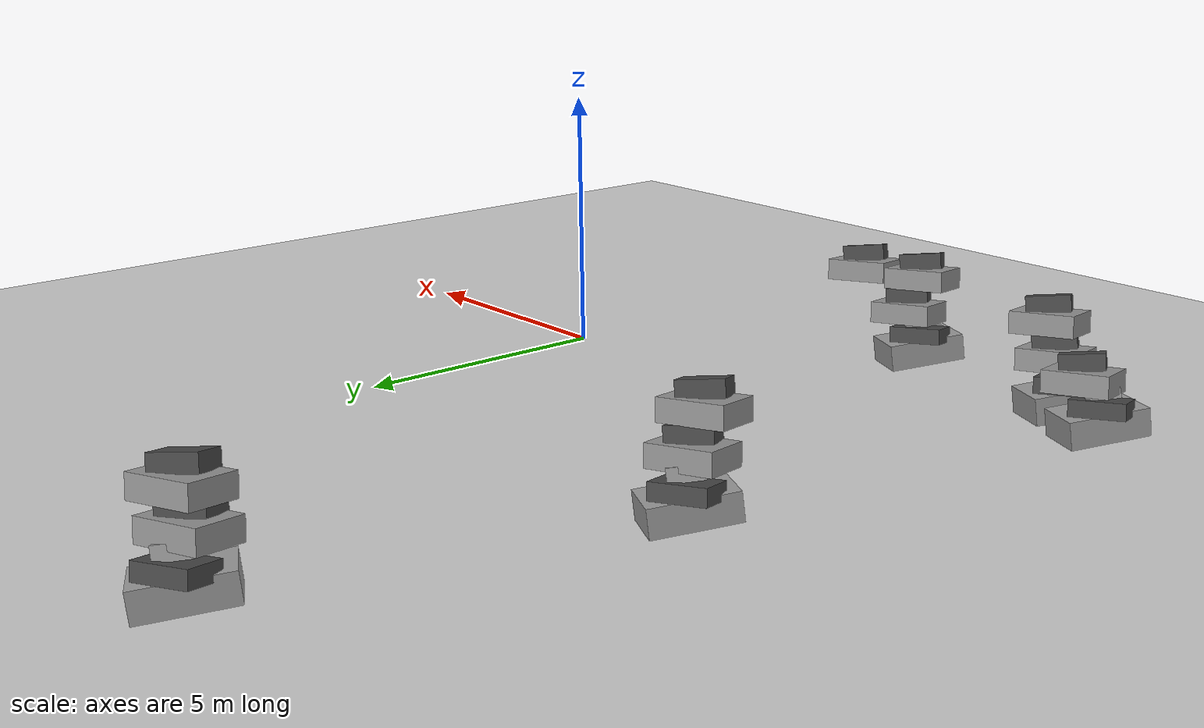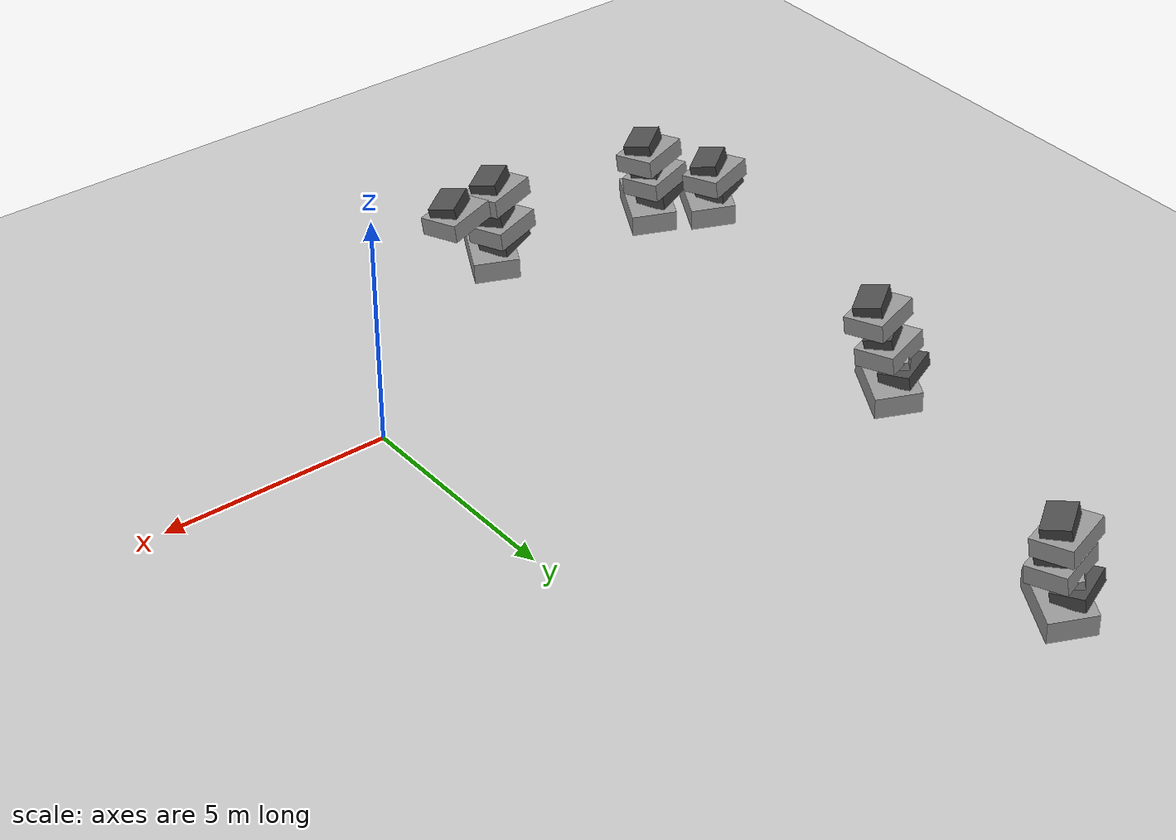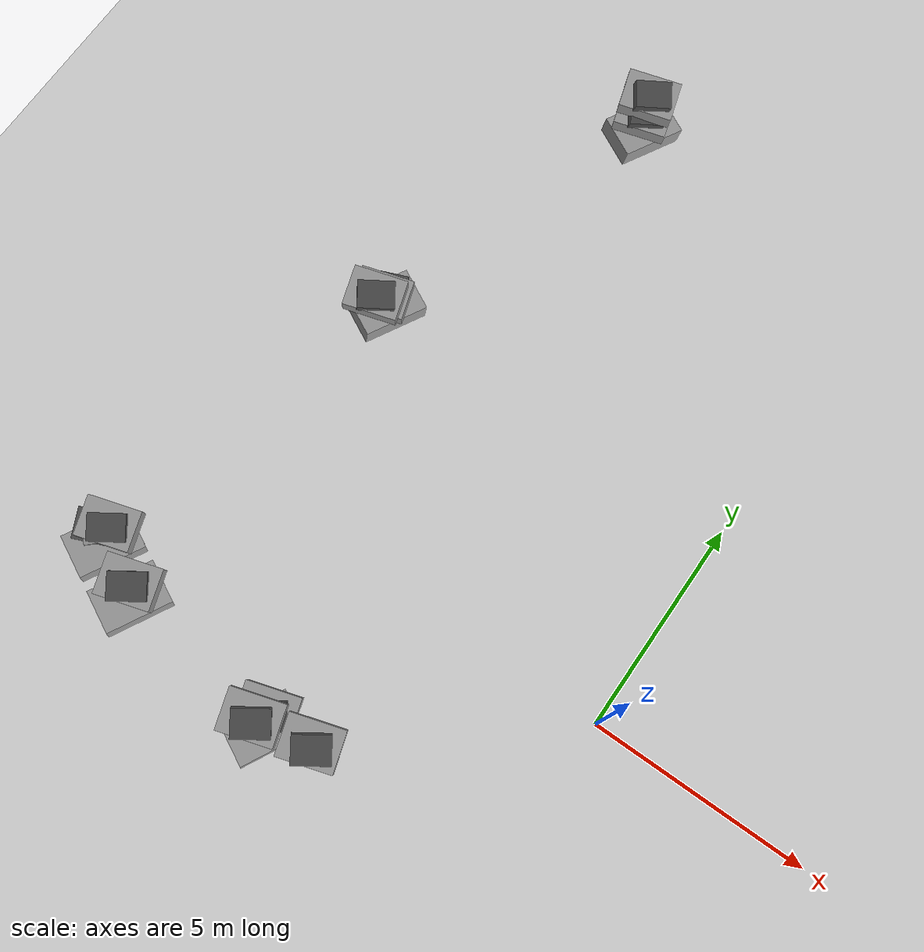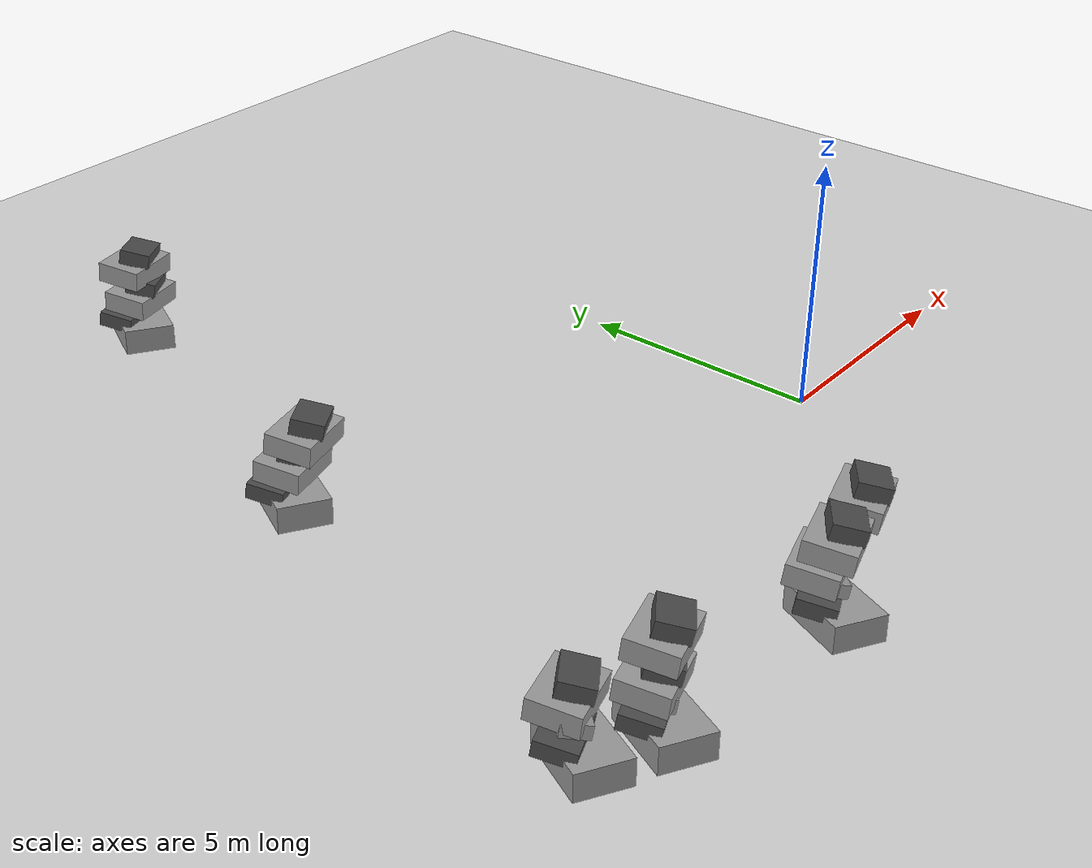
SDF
<sdf version="1.9">
 <world name="disaster_hospital">
  <include>
   <uri>file:///home/robotics/.gazebo/models/ground_plane</uri>
   <static>true</static>
   <name>ground_plane</name>
   <pose>0 0 -0.1 0 -0 0</pose>
  </include>
  <model name="rubble2_06">
   <static>true</static>
   <pose>-5.60363 -4.04821 0 0 -0 0</pose>
   <link name="link">
    <collision name="base_collision">
     <pose>0 0 0.25 0.05 0.1 1.1</pose>
     <geometry><box><size>1.5 1 0.5</size></box></geometry>
    </collision>
    <visual name="base_visual">
     <pose>0 0 0.25 0.05 0.1 1.1</pose>
     <geometry><box><size>1.5 1 0.5</size></box></geometry>
     <material>
      <script><uri>file://media/materials/scripts/gazebo.material</uri><name>Gazebo/Grey</name></script>
     </material>
    </visual>
    <collision name="mid_collision">
     <pose>-0.2 0.2 0.6 0.15 0.05 0.4</pose>
     <geometry><box><size>1 0.7 0.3</size></box></geometry>
    </collision>
    <visual name="mid_visual">
     <pose>-0.2 0.2 0.6 0.15 0.05 0.4</pose>
     <geometry><box><size>1 0.7 0.3</size></box></geometry>
     <material>
      <script><uri>file://media/materials/scripts/gazebo.material</uri><name>Gazebo/DarkGrey</name></script>
     </material>
    </visual>
    <collision name="top_collision">
     <pose>-0.1 0.1 0.85 0.2 0.15 0.8</pose>
     <geometry><box><size>0.6 0.5 0.25</size></box></geometry>
    </collision>
    <visual name="top_visual">
     <pose>-0.1 0.1 0.85 0.2 0.15 0.8</pose>
     <geometry><box><size>0.6 0.5 0.25</size></box></geometry>
     <material>
      <script><uri>file://media/materials/scripts/gazebo.material</uri><name>Gazebo/Grey</name></script>
     </material>
    </visual>
    <inertial>
     <mass>1</mass>
     <inertia><ixx>1</ixx><ixy>0</ixy><ixz>0</ixz><iyy>1</iyy><iyz>0</iyz><izz>1</izz></inertia>
    </inertial>
   </link>
  </model>
  <model name="rubble1_09">
   <static>true</static>
   <pose>-5.63108 -3.68594 0.854105 0 -0 0</pose>
   <link name="link">
    <collision name="base_collision">
     <pose>0 0 0.2 0.1 0.05 0.3</pose>
     <geometry><box><size>1.2 0.9 0.4</size></box></geometry>
    </collision>
    <visual name="base_visual">
     <pose>0 0 0.2 0.1 0.05 0.3</pose>
     <geometry><box><size>1.2 0.9 0.4</size></box></geometry>
     <material>
      <script><uri>file://media/materials/scripts/gazebo.material</uri><name>Gazebo/Grey</name></script>
     </material>
    </visual>
    <collision name="top_collision">
     <pose>0.1 -0.1 0.5 0.2 0.1 0.6</pose>
     <geometry><box><size>0.8 0.6 0.3</size></box></geometry>
    </collision>
    <visual name="top_visual">
     <pose>0.1 -0.1 0.5 0.2 0.1 0.6</pose>
     <geometry><box><size>0.8 0.6 0.3</size></box></geometry>
     <material>
      <script><uri>file://media/materials/scripts/gazebo.material</uri><name>Gazebo/DarkGrey</name></script>
     </material>
    </visual>
    <inertial>
     <mass>1</mass>
     <inertia><ixx>1</ixx><ixy>0</ixy><ixz>0</ixz><iyy>1</iyy><iyz>0</iyz><izz>1</izz></inertia>
    </inertial>
   </link>
  </model>
  <model name="rubble2_16">
   <static>true</static>
   <pose>-10.7362 -2.88621 0 0 -0 0</pose>
   <link name="link">
    <collision name="base_collision">
     <pose>0 0 0.25 0.05 0.1 1.1</pose>
     <geometry><box><size>1.5 1 0.5</size></box></geometry>
    </collision>
    <visual name="base_visual">
     <pose>0 0 0.25 0.05 0.1 1.1</pose>
     <geometry><box><size>1.5 1 0.5</size></box></geometry>
     <material>
      <script><uri>file://media/materials/scripts/gazebo.material</uri><name>Gazebo/Grey</name></script>
     </material>
    </visual>
    <collision name="mid_collision">
     <pose>-0.2 0.2 0.6 0.15 0.05 0.4</pose>
     <geometry><box><size>1 0.7 0.3</size></box></geometry>
    </collision>
    <visual name="mid_visual">
     <pose>-0.2 0.2 0.6 0.15 0.05 0.4</pose>
     <geometry><box><size>1 0.7 0.3</size></box></geometry>
     <material>
      <script><uri>file://media/materials/scripts/gazebo.material</uri><name>Gazebo/DarkGrey</name></script>
     </material>
    </visual>
    <collision name="top_collision">
     <pose>-0.1 0.1 0.85 0.2 0.15 0.8</pose>
     <geometry><box><size>0.6 0.5 0.25</size></box></geometry>
    </collision>
    <visual name="top_visual">
     <pose>-0.1 0.1 0.85 0.2 0.15 0.8</pose>
     <geometry><box><size>0.6 0.5 0.25</size></box></geometry>
     <material>
      <script><uri>file://media/materials/scripts/gazebo.material</uri><name>Gazebo/Grey</name></script>
     </material>
    </visual>
    <inertial>
     <mass>1</mass>
     <inertia><ixx>1</ixx><ixy>0</ixy><ixz>0</ixz><iyy>1</iyy><iyz>0</iyz><izz>1</izz></inertia>
    </inertial>
   </link>
  </model>
  <model name="rubble2_17">
   <static>true</static>
   <pose>-9.53296 -3.48983 0 0 -0 0</pose>
   <link name="link">
    <collision name="base_collision">
     <pose>0 0 0.25 0.05 0.1 1.1</pose>
     <geometry><box><size>1.5 1 0.5</size></box></geometry>
    </collision>
    <visual name="base_visual">
     <pose>0 0 0.25 0.05 0.1 1.1</pose>
     <geometry><box><size>1.5 1 0.5</size></box></geometry>
     <material>
      <script><uri>file://media/materials/scripts/gazebo.material</uri><name>Gazebo/Grey</name></script>
     </material>
    </visual>
    <collision name="mid_collision">
     <pose>-0.2 0.2 0.6 0.15 0.05 0.4</pose>
     <geometry><box><size>1 0.7 0.3</size></box></geometry>
    </collision>
    <visual name="mid_visual">
     <pose>-0.2 0.2 0.6 0.15 0.05 0.4</pose>
     <geometry><box><size>1 0.7 0.3</size></box></geometry>
     <material>
      <script><uri>file://media/materials/scripts/gazebo.material</uri><name>Gazebo/DarkGrey</name></script>
     </material>
    </visual>
    <collision name="top_collision">
     <pose>-0.1 0.1 0.85 0.2 0.15 0.8</pose>
     <geometry><box><size>0.6 0.5 0.25</size></box></geometry>
    </collision>
    <visual name="top_visual">
     <pose>-0.1 0.1 0.85 0.2 0.15 0.8</pose>
     <geometry><box><size>0.6 0.5 0.25</size></box></geometry>
     <material>
      <script><uri>file://media/materials/scripts/gazebo.material</uri><name>Gazebo/Grey</name></script>
     </material>
    </visual>
    <inertial>
     <mass>1</mass>
     <inertia><ixx>1</ixx><ixy>0</ixy><ixz>0</ixz><iyy>1</iyy><iyz>0</iyz><izz>1</izz></inertia>
    </inertial>
   </link>
  </model>
  <model name="rubble2_18">
   <static>true</static>
   <pose>-6.64454 12.0901 0 0 -0 0</pose>
   <link name="link">
    <collision name="base_collision">
     <pose>0 0 0.25 0.05 0.1 1.1</pose>
     <geometry><box><size>1.5 1 0.5</size></box></geometry>
    </collision>
    <visual name="base_visual">
     <pose>0 0 0.25 0.05 0.1 1.1</pose>
     <geometry><box><size>1.5 1 0.5</size></box></geometry>
     <material>
      <script><uri>file://media/materials/scripts/gazebo.material</uri><name>Gazebo/Grey</name></script>
     </material>
    </visual>
    <collision name="mid_collision">
     <pose>-0.2 0.2 0.6 0.15 0.05 0.4</pose>
     <geometry><box><size>1 0.7 0.3</size></box></geometry>
    </collision>
    <visual name="mid_visual">
     <pose>-0.2 0.2 0.6 0.15 0.05 0.4</pose>
     <geometry><box><size>1 0.7 0.3</size></box></geometry>
     <material>
      <script><uri>file://media/materials/scripts/gazebo.material</uri><name>Gazebo/DarkGrey</name></script>
     </material>
    </visual>
    <collision name="top_collision">
     <pose>-0.1 0.1 0.85 0.2 0.15 0.8</pose>
     <geometry><box><size>0.6 0.5 0.25</size></box></geometry>
    </collision>
    <visual name="top_visual">
     <pose>-0.1 0.1 0.85 0.2 0.15 0.8</pose>
     <geometry><box><size>0.6 0.5 0.25</size></box></geometry>
     <material>
      <script><uri>file://media/materials/scripts/gazebo.material</uri><name>Gazebo/Grey</name></script>
     </material>
    </visual>
    <inertial>
     <mass>1</mass>
     <inertia><ixx>1</ixx><ixy>0</ixy><ixz>0</ixz><iyy>1</iyy><iyz>0</iyz><izz>1</izz></inertia>
    </inertial>
   </link>
  </model>
  <model name="rubble2_19">
   <static>true</static>
   <pose>-8.97375 5.03409 0 0 -0 0</pose>
   <link name="link">
    <collision name="base_collision">
     <pose>0 0 0.25 0.05 0.1 1.1</pose>
     <geometry><box><size>1.5 1 0.5</size></box></geometry>
    </collision>
    <visual name="base_visual">
     <pose>0 0 0.25 0.05 0.1 1.1</pose>
     <geometry><box><size>1.5 1 0.5</size></box></geometry>
     <material>
      <script><uri>file://media/materials/scripts/gazebo.material</uri><name>Gazebo/Grey</name></script>
     </material>
    </visual>
    <collision name="mid_collision">
     <pose>-0.2 0.2 0.6 0.15 0.05 0.4</pose>
     <geometry><box><size>1 0.7 0.3</size></box></geometry>
    </collision>
    <visual name="mid_visual">
     <pose>-0.2 0.2 0.6 0.15 0.05 0.4</pose>
     <geometry><box><size>1 0.7 0.3</size></box></geometry>
     <material>
      <script><uri>file://media/materials/scripts/gazebo.material</uri><name>Gazebo/DarkGrey</name></script>
     </material>
    </visual>
    <collision name="top_collision">
     <pose>-0.1 0.1 0.85 0.2 0.15 0.8</pose>
     <geometry><box><size>0.6 0.5 0.25</size></box></geometry>
    </collision>
    <visual name="top_visual">
     <pose>-0.1 0.1 0.85 0.2 0.15 0.8</pose>
     <geometry><box><size>0.6 0.5 0.25</size></box></geometry>
     <material>
      <script><uri>file://media/materials/scripts/gazebo.material</uri><name>Gazebo/Grey</name></script>
     </material>
    </visual>
    <inertial>
     <mass>1</mass>
     <inertia><ixx>1</ixx><ixy>0</ixy><ixz>0</ixz><iyy>1</iyy><iyz>0</iyz><izz>1</izz></inertia>
    </inertial>
   </link>
  </model>
  <model name="rubble1_16">
   <static>true</static>
   <pose>-9.52299 -3.23745 0.854105 0 -0 0</pose>
   <link name="link">
    <collision name="base_collision">
     <pose>0 0 0.2 0.1 0.05 0.3</pose>
     <geometry><box><size>1.2 0.9 0.4</size></box></geometry>
    </collision>
    <visual name="base_visual">
     <pose>0 0 0.2 0.1 0.05 0.3</pose>
     <geometry><box><size>1.2 0.9 0.4</size></box></geometry>
     <material>
      <script><uri>file://media/materials/scripts/gazebo.material</uri><name>Gazebo/Grey</name></script>
     </material>
    </visual>
    <collision name="top_collision">
     <pose>0.1 -0.1 0.5 0.2 0.1 0.6</pose>
     <geometry><box><size>0.8 0.6 0.3</size></box></geometry>
    </collision>
    <visual name="top_visual">
     <pose>0.1 -0.1 0.5 0.2 0.1 0.6</pose>
     <geometry><box><size>0.8 0.6 0.3</size></box></geometry>
     <material>
      <script><uri>file://media/materials/scripts/gazebo.material</uri><name>Gazebo/DarkGrey</name></script>
     </material>
    </visual>
    <inertial>
     <mass>1</mass>
     <inertia><ixx>1</ixx><ixy>0</ixy><ixz>0</ixz><iyy>1</iyy><iyz>0</iyz><izz>1</izz></inertia>
    </inertial>
   </link>
  </model>
  <model name="rubble1_17">
   <static>true</static>
   <pose>-10.6502 -2.51844 0.854105 0 -0 0</pose>
   <link name="link">
    <collision name="base_collision">
     <pose>0 0 0.2 0.1 0.05 0.3</pose>
     <geometry><box><size>1.2 0.9 0.4</size></box></geometry>
    </collision>
    <visual name="base_visual">
     <pose>0 0 0.2 0.1 0.05 0.3</pose>
     <geometry><box><size>1.2 0.9 0.4</size></box></geometry>
     <material>
      <script><uri>file://media/materials/scripts/gazebo.material</uri><name>Gazebo/Grey</name></script>
     </material>
    </visual>
    <collision name="top_collision">
     <pose>0.1 -0.1 0.5 0.2 0.1 0.6</pose>
     <geometry><box><size>0.8 0.6 0.3</size></box></geometry>
    </collision>
    <visual name="top_visual">
     <pose>0.1 -0.1 0.5 0.2 0.1 0.6</pose>
     <geometry><box><size>0.8 0.6 0.3</size></box></geometry>
     <material>
      <script><uri>file://media/materials/scripts/gazebo.material</uri><name>Gazebo/DarkGrey</name></script>
     </material>
    </visual>
    <inertial>
     <mass>1</mass>
     <inertia><ixx>1</ixx><ixy>0</ixy><ixz>0</ixz><iyy>1</iyy><iyz>0</iyz><izz>1</izz></inertia>
    </inertial>
   </link>
  </model>
  <model name="rubble1_18">
   <static>true</static>
   <pose>-8.99016 4.95016 0.854105 0 -0 0</pose>
   <link name="link">
    <collision name="base_collision">
     <pose>0 0 0.2 0.1 0.05 0.3</pose>
     <geometry><box><size>1.2 0.9 0.4</size></box></geometry>
    </collision>
    <visual name="base_visual">
     <pose>0 0 0.2 0.1 0.05 0.3</pose>
     <geometry><box><size>1.2 0.9 0.4</size></box></geometry>
     <material>
      <script><uri>file://media/materials/scripts/gazebo.material</uri><name>Gazebo/Grey</name></script>
     </material>
    </visual>
    <collision name="top_collision">
     <pose>0.1 -0.1 0.5 0.2 0.1 0.6</pose>
     <geometry><box><size>0.8 0.6 0.3</size></box></geometry>
    </collision>
    <visual name="top_visual">
     <pose>0.1 -0.1 0.5 0.2 0.1 0.6</pose>
     <geometry><box><size>0.8 0.6 0.3</size></box></geometry>
     <material>
      <script><uri>file://media/materials/scripts/gazebo.material</uri><name>Gazebo/DarkGrey</name></script>
     </material>
    </visual>
    <inertial>
     <mass>1</mass>
     <inertia><ixx>1</ixx><ixy>0</ixy><ixz>0</ixz><iyy>1</iyy><iyz>0</iyz><izz>1</izz></inertia>
    </inertial>
   </link>
  </model>
  <model name="rubble1_22">
   <static>true</static>
   <pose>-6.66916 11.9812 0.854105 0 -0 0</pose>
   <link name="link">
    <collision name="base_collision">
     <pose>0 0 0.2 0.1 0.05 0.3</pose>
     <geometry><box><size>1.2 0.9 0.4</size></box></geometry>
    </collision>
    <visual name="base_visual">
     <pose>0 0 0.2 0.1 0.05 0.3</pose>
     <geometry><box><size>1.2 0.9 0.4</size></box></geometry>
     <material>
      <script><uri>file://media/materials/scripts/gazebo.material</uri><name>Gazebo/Grey</name></script>
     </material>
    </visual>
    <collision name="top_collision">
     <pose>0.1 -0.1 0.5 0.2 0.1 0.6</pose>
     <geometry><box><size>0.8 0.6 0.3</size></box></geometry>
    </collision>
    <visual name="top_visual">
     <pose>0.1 -0.1 0.5 0.2 0.1 0.6</pose>
     <geometry><box><size>0.8 0.6 0.3</size></box></geometry>
     <material>
      <script><uri>file://media/materials/scripts/gazebo.material</uri><name>Gazebo/DarkGrey</name></script>
     </material>
    </visual>
    <inertial>
     <mass>1</mass>
     <inertia><ixx>1</ixx><ixy>0</ixy><ixz>0</ixz><iyy>1</iyy><iyz>0</iyz><izz>1</izz></inertia>
    </inertial>
   </link>
  </model>
  <model name="rubble1_28">
   <static>true</static>
   <pose>-4.4561 -3.69667 1.49923 0 -0 0</pose>
   <link name="link">
    <collision name="base_collision">
     <pose>0 0 0.2 0.1 0.05 0.3</pose>
     <geometry><box><size>1.2 0.9 0.4</size></box></geometry>
    </collision>
    <visual name="base_visual">
     <pose>0 0 0.2 0.1 0.05 0.3</pose>
     <geometry><box><size>1.2 0.9 0.4</size></box></geometry>
     <material>
      <script><uri>file://media/materials/scripts/gazebo.material</uri><name>Gazebo/Grey</name></script>
     </material>
    </visual>
    <collision name="top_collision">
     <pose>0.1 -0.1 0.5 0.2 0.1 0.6</pose>
     <geometry><box><size>0.8 0.6 0.3</size></box></geometry>
    </collision>
    <visual name="top_visual">
     <pose>0.1 -0.1 0.5 0.2 0.1 0.6</pose>
     <geometry><box><size>0.8 0.6 0.3</size></box></geometry>
     <material>
      <script><uri>file://media/materials/scripts/gazebo.material</uri><name>Gazebo/DarkGrey</name></script>
     </material>
    </visual>
    <inertial>
     <mass>1</mass>
     <inertia><ixx>1</ixx><ixy>0</ixy><ixz>0</ixz><iyy>1</iyy><iyz>0</iyz><izz>1</izz></inertia>
    </inertial>
   </link>
  </model>
  <model name="rubble1_29">
   <static>true</static>
   <pose>-5.70957 -3.96723 1.49923 0 -0 0</pose>
   <link name="link">
    <collision name="base_collision">
     <pose>0 0 0.2 0.1 0.05 0.3</pose>
     <geometry><box><size>1.2 0.9 0.4</size></box></geometry>
    </collision>
    <visual name="base_visual">
     <pose>0 0 0.2 0.1 0.05 0.3</pose>
     <geometry><box><size>1.2 0.9 0.4</size></box></geometry>
     <material>
      <script><uri>file://media/materials/scripts/gazebo.material</uri><name>Gazebo/Grey</name></script>
     </material>
    </visual>
    <collision name="top_collision">
     <pose>0.1 -0.1 0.5 0.2 0.1 0.6</pose>
     <geometry><box><size>0.8 0.6 0.3</size></box></geometry>
    </collision>
    <visual name="top_visual">
     <pose>0.1 -0.1 0.5 0.2 0.1 0.6</pose>
     <geometry><box><size>0.8 0.6 0.3</size></box></geometry>
     <material>
      <script><uri>file://media/materials/scripts/gazebo.material</uri><name>Gazebo/DarkGrey</name></script>
     </material>
    </visual>
    <inertial>
     <mass>1</mass>
     <inertia><ixx>1</ixx><ixy>0</ixy><ixz>0</ixz><iyy>1</iyy><iyz>0</iyz><izz>1</izz></inertia>
    </inertial>
   </link>
  </model>
  <model name="rubble1_30">
   <static>true</static>
   <pose>-9.34884 -3.242 1.49923 0 -0 0</pose>
   <link name="link">
    <collision name="base_collision">
     <pose>0 0 0.2 0.1 0.05 0.3</pose>
     <geometry><box><size>1.2 0.9 0.4</size></box></geometry>
    </collision>
    <visual name="base_visual">
     <pose>0 0 0.2 0.1 0.05 0.3</pose>
     <geometry><box><size>1.2 0.9 0.4</size></box></geometry>
     <material>
      <script><uri>file://media/materials/scripts/gazebo.material</uri><name>Gazebo/Grey</name></script>
     </material>
    </visual>
    <collision name="top_collision">
     <pose>0.1 -0.1 0.5 0.2 0.1 0.6</pose>
     <geometry><box><size>0.8 0.6 0.3</size></box></geometry>
    </collision>
    <visual name="top_visual">
     <pose>0.1 -0.1 0.5 0.2 0.1 0.6</pose>
     <geometry><box><size>0.8 0.6 0.3</size></box></geometry>
     <material>
      <script><uri>file://media/materials/scripts/gazebo.material</uri><name>Gazebo/DarkGrey</name></script>
     </material>
    </visual>
    <inertial>
     <mass>1</mass>
     <inertia><ixx>1</ixx><ixy>0</ixy><ixz>0</ixz><iyy>1</iyy><iyz>0</iyz><izz>1</izz></inertia>
    </inertial>
   </link>
  </model>
  <model name="rubble1_35">
   <static>true</static>
   <pose>-6.67136 12.0416 1.49923 0 -0 0</pose>
   <link name="link">
    <collision name="base_collision">
     <pose>0 0 0.2 0.1 0.05 0.3</pose>
     <geometry><box><size>1.2 0.9 0.4</size></box></geometry>
    </collision>
    <visual name="base_visual">
     <pose>0 0 0.2 0.1 0.05 0.3</pose>
     <geometry><box><size>1.2 0.9 0.4</size></box></geometry>
     <material>
      <script><uri>file://media/materials/scripts/gazebo.material</uri><name>Gazebo/Grey</name></script>
     </material>
    </visual>
    <collision name="top_collision">
     <pose>0.1 -0.1 0.5 0.2 0.1 0.6</pose>
     <geometry><box><size>0.8 0.6 0.3</size></box></geometry>
    </collision>
    <visual name="top_visual">
     <pose>0.1 -0.1 0.5 0.2 0.1 0.6</pose>
     <geometry><box><size>0.8 0.6 0.3</size></box></geometry>
     <material>
      <script><uri>file://media/materials/scripts/gazebo.material</uri><name>Gazebo/DarkGrey</name></script>
     </material>
    </visual>
    <inertial>
     <mass>1</mass>
     <inertia><ixx>1</ixx><ixy>0</ixy><ixz>0</ixz><iyy>1</iyy><iyz>0</iyz><izz>1</izz></inertia>
    </inertial>
   </link>
  </model>
  <model name="rubble1_36">
   <static>true</static>
   <pose>-8.92556 4.65888 1.49923 0 -0 0</pose>
   <link name="link">
    <collision name="base_collision">
     <pose>0 0 0.2 0.1 0.05 0.3</pose>
     <geometry><box><size>1.2 0.9 0.4</size></box></geometry>
    </collision>
    <visual name="base_visual">
     <pose>0 0 0.2 0.1 0.05 0.3</pose>
     <geometry><box><size>1.2 0.9 0.4</size></box></geometry>
     <material>
      <script><uri>file://media/materials/scripts/gazebo.material</uri><name>Gazebo/Grey</name></script>
     </material>
    </visual>
    <collision name="top_collision">
     <pose>0.1 -0.1 0.5 0.2 0.1 0.6</pose>
     <geometry><box><size>0.8 0.6 0.3</size></box></geometry>
    </collision>
    <visual name="top_visual">
     <pose>0.1 -0.1 0.5 0.2 0.1 0.6</pose>
     <geometry><box><size>0.8 0.6 0.3</size></box></geometry>
     <material>
      <script><uri>file://media/materials/scripts/gazebo.material</uri><name>Gazebo/DarkGrey</name></script>
     </material>
    </visual>
    <inertial>
     <mass>1</mass>
     <inertia><ixx>1</ixx><ixy>0</ixy><ixz>0</ixz><iyy>1</iyy><iyz>0</iyz><izz>1</izz></inertia>
    </inertial>
   </link>
  </model>
  <model name="outside_ground_west">
   <static>true</static>
   <pose>-44.0 0 0.165474 0 0 0</pose>
   <link name="link">
    <collision name="collision"><geometry><box><size>32.0 25.0 0.02</size></box></geometry></collision>
   </link>
  </model>
 </world>
</sdf>
